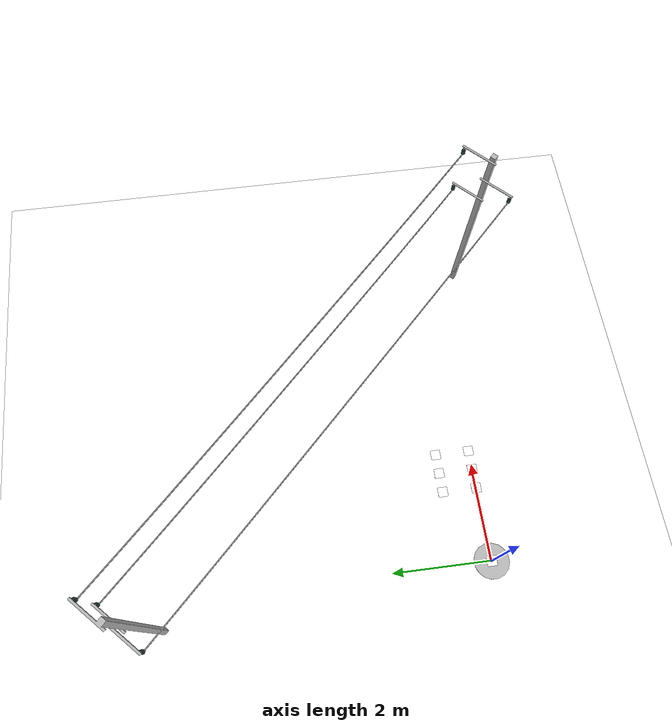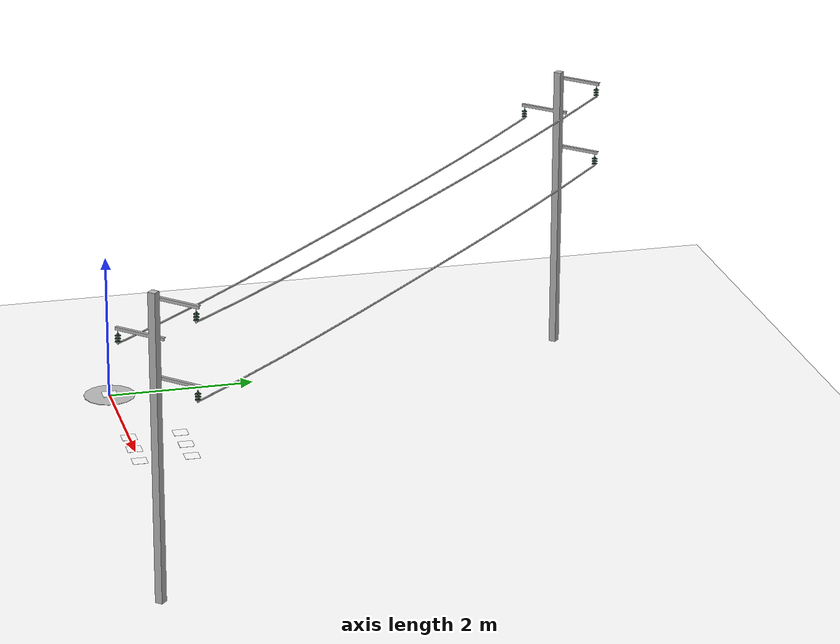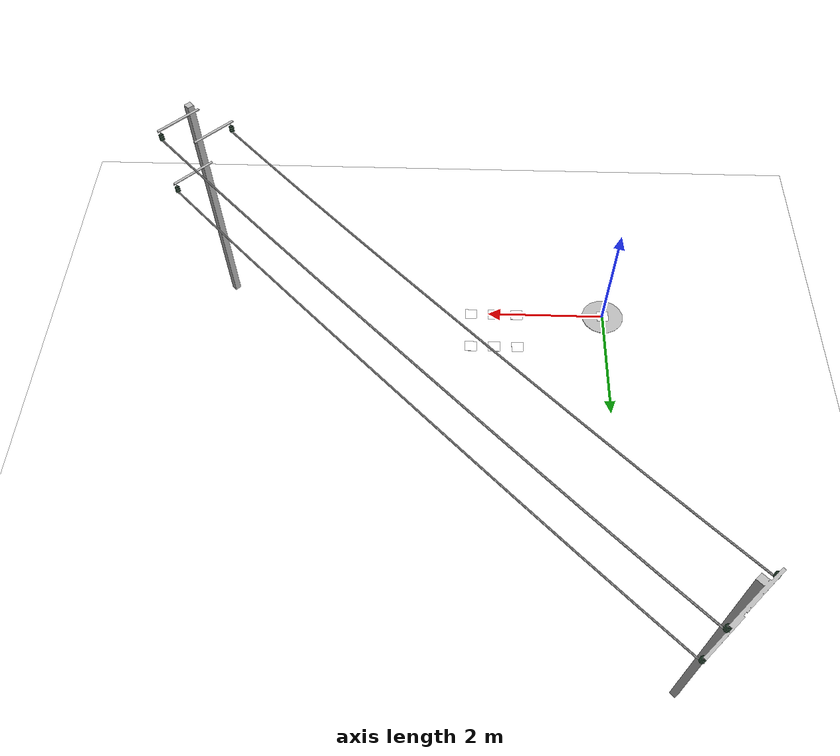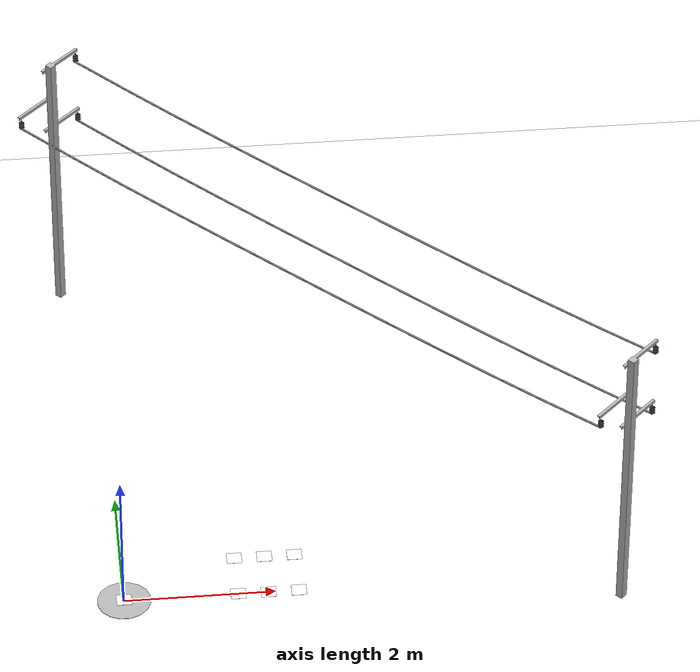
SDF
<?xml version="1.0" ?>
<sdf version="1.10">
  <world name="clover_aruco">

    <physics name="1ms" type="ignored">
      <max_step_size>0.001</max_step_size>
      <real_time_factor>1.0</real_time_factor>
      <real_time_update_rate>1000</real_time_update_rate>
    </physics>

    <scene>
      <ambient>0.9 0.9 0.9 1</ambient>
      <background>0.5 0.7 1.0 1</background>
      <sky/>
      <shadows>true</shadows>
    </scene>

    <plugin filename="gz-sim-physics-system" name="gz::sim::systems::Physics"/>
    <plugin filename="gz-sim-user-commands-system" name="gz::sim::systems::UserCommands"/>
    <plugin filename="gz-sim-scene-broadcaster-system" name="gz::sim::systems::SceneBroadcaster"/>
    <plugin filename="gz-sim-sensors-system" name="gz::sim::systems::Sensors">
      <render_engine>ogre2</render_engine>
    </plugin>
    <plugin filename="gz-sim-imu-system" name="gz::sim::systems::Imu"/>
    <plugin filename="gz-sim-air-pressure-system" name="gz::sim::systems::AirPressure"/>
    <plugin filename="gz-sim-magnetometer-system" name="gz::sim::systems::Magnetometer"/>
    <plugin filename="gz-sim-navsat-system" name="gz::sim::systems::NavSat"/>

    <gui fullscreen="0">
      <plugin filename="MinimalScene" name="3D View">
        <gz-gui>
          <title>3D View</title>
          <property type="bool" key="showTitleBar">false</property>
          <property type="string" key="state">docked</property>
        </gz-gui>
        <engine>ogre2</engine>
        <scene>scene</scene>
        <ambient_light>0.9 0.9 0.9</ambient_light>
        <background_color>0.5 0.7 1.0</background_color>
        <sky>true</sky>
        <camera_pose>-5 -5 3 0 0.4 0.785</camera_pose>
      </plugin>
          <plugin filename="GzSceneManager" name="Scene Manager">
        <gz-gui>
          <property key="resizable" type="bool">false</property>
          <property key="width" type="double">5</property>
          <property key="height" type="double">5</property>
          <property key="state" type="string">floating</property>
          <property key="showTitleBar" type="bool">false</property>
        </gz-gui>
      </plugin>
      <plugin filename="InteractiveViewControl" name="Interactive view control">
        <gz-gui>
          <property key="resizable" type="bool">false</property>
          <property key="width" type="double">5</property>
          <property key="height" type="double">5</property>
          <property key="state" type="string">floating</property>
          <property key="showTitleBar" type="bool">false</property>
        </gz-gui>
      </plugin>
      <plugin filename="CameraTracking" name="Camera tracking">
        <gz-gui>
          <property key="resizable" type="bool">false</property>
          <property key="width" type="double">5</property>
          <property key="height" type="double">5</property>
          <property key="state" type="string">floating</property>
          <property key="showTitleBar" type="bool">false</property>
        </gz-gui>
      </plugin>
      <plugin filename="WorldControl" name="World control">
        <gz-gui>
          <title>World control</title>
          <property type="bool" key="showTitleBar">false</property>
          <property type="bool" key="resizable">false</property>
          <property type="double" key="height">72</property>
          <property type="double" key="width">121</property>
          <property type="double" key="z">1</property>
          <property type="string" key="state">floating</property>
          <anchors target="3D View">
            <line own="left" target="left"/>
            <line own="bottom" target="bottom"/>
          </anchors>
        </gz-gui>
        <play_pause>true</play_pause>
        <step>true</step>
        <start_paused>false</start_paused>
      </plugin>
      <plugin filename="WorldStats" name="World stats">
        <gz-gui>
          <title>World stats</title>
          <property type="bool" key="showTitleBar">false</property>
          <property type="bool" key="resizable">false</property>
          <property type="double" key="height">110</property>
          <property type="double" key="width">290</property>
          <property type="double" key="z">1</property>
          <property type="string" key="state">floating</property>
          <anchors target="3D View">
            <line own="right" target="right"/>
            <line own="bottom" target="bottom"/>
          </anchors>
        </gz-gui>
        <sim_time>true</sim_time>
        <real_time>true</real_time>
        <real_time_factor>true</real_time_factor>
        <iterations>true</iterations>
      </plugin>
      <plugin filename="Screenshot" name="Screenshot">
        <gz-gui>
          <property key="resizable" type="bool">false</property>
          <property key="width" type="double">5</property>
          <property key="height" type="double">5</property>
          <property key="state" type="string">floating</property>
          <property key="showTitleBar" type="bool">false</property>
        </gz-gui>
      </plugin>
    </gui>

    <light type="directional" name="sun">
      <cast_shadows>true</cast_shadows>
      <pose>0 0 10 0 0 0</pose>
      <diffuse>1.0 1.0 0.95 1</diffuse>
      <specular>0.6 0.6 0.6 1</specular>
      <attenuation>
        <range>1000</range>
        <constant>1.0</constant>
        <linear>0.0</linear>
        <quadratic>0.0</quadratic>
      </attenuation>
      <direction>-0.4 0.1 -0.9</direction>
    </light>

    <light type="directional" name="fill_light">
      <cast_shadows>false</cast_shadows>
      <pose>0 0 10 0 0 0</pose>
      <diffuse>0.5 0.55 0.6 1</diffuse>
      <specular>0.1 0.1 0.1 1</specular>
      <direction>0.4 -0.2 -0.7</direction>
    </light>

    <!-- Parquet/grass ground -->
    <include>
      <uri>model://parquet_plane</uri>
      <pose>0 0 -0.01 0 0 0</pose>
    </include>

    <!-- Cable tower at 3,3 with 135° yaw (matches original world) -->
    <include>
      <uri>model://cable_tower</uri>
      <pose>3 3 0 0 0 2.3562</pose>
    </include>

    <!-- Landing pad at origin -->
    <include>
      <uri>model://landing_pad</uri>
      <pose>0 0 0 0 0 0</pose>
    </include>

    <include><uri>model://aruco_0</uri>  <pose>0.0 0.0 0.02 0 0 0</pose></include>
    <include><uri>model://aruco_1</uri>  <pose>1.5 0.0 0.001 0 0 0</pose></include>
    <include><uri>model://aruco_2</uri>  <pose>1.9 0.0 0.001 0 0 0</pose></include>
    <include><uri>model://aruco_3</uri>  <pose>2.3 0.0 0.001 0 0 0</pose></include>
    <include><uri>model://aruco_11</uri> <pose>1.5 0.7 0.001 0 0 0</pose></include>
    <include><uri>model://aruco_12</uri> <pose>1.9 0.7 0.001 0 0 0</pose></include>
    <include><uri>model://aruco_13</uri> <pose>2.3 0.7 0.001 0 0 0</pose></include>

  </world>
</sdf>

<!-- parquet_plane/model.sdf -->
<sdf version="1.10">
  <model name="parquet_plane">
    <static>true</static>
    <link name="link">
      <collision name="collision">
        <geometry>
          <box>
            <size>200 200 0.02</size>
          </box>
        </geometry>
      </collision>
      <visual name="visual">
        <cast_shadows>false</cast_shadows>
        <geometry>
          <box>
            <size>200 200 0.02</size>
          </box>
        </geometry>
        <material>
          <ambient>0.8 0.8 0.8 1</ambient>
          <diffuse>1.0 1.0 1.0 1</diffuse>
          <specular>0.1 0.1 0.1 1</specular>
          <pbr>
            <metal>
              <albedo_map>model://parquet_plane/materials/textures/grass.png</albedo_map>
              <metalness>0.0</metalness>
              <roughness>0.9</roughness>
            </metal>
          </pbr>
        </material>
      </visual>
    </link>
  </model>
</sdf>

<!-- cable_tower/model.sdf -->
<sdf version="1.10">
  <model name="cable_tower">
    <static>true</static>
    <link name="link">
      <collision name="collision">
        <geometry>
          <mesh>
            <scale>1 1 1</scale>
            <uri>model://cable_tower/meshes/cable_tower.dae</uri>
          </mesh>
        </geometry>
      </collision>
      <visual name="visual">
        <geometry>
          <mesh>
            <scale>1 1 1</scale>
            <uri>model://cable_tower/meshes/cable_tower.dae</uri>
          </mesh>
        </geometry>
      </visual>
    </link>
  </model>
</sdf>

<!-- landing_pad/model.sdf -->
<sdf version="1.10">
  <model name="landing_pad">
    <static>true</static>
    <link name="link">
      <visual name="visual">
        <geometry>
          <mesh>
            <scale>1 1 1</scale>
            <uri>model://landing_pad/meshes/landing_pad.dae</uri>
          </mesh>
        </geometry>
      </visual>
    </link>
  </model>
</sdf>

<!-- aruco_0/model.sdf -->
<sdf version="1.10">
  <model name="aruco_0">
    <static>true</static>
    <link name="link">
      <visual name="visual">
        <geometry>
          <box>
            <size>0.2 0.2 0.002</size>
          </box>
        </geometry>
        <material>
          <diffuse>1 1 1 1</diffuse>
          <specular>0 0 0 1</specular>
          <pbr>
            <metal>
              <albedo_map>materials/textures/aruco_0.png</albedo_map>
              <metalness>0.0</metalness>
              <roughness>1.0</roughness>
            </metal>
          </pbr>
        </material>
      </visual>
    </link>
  </model>
</sdf>

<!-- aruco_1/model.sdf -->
<sdf version="1.10">
  <model name="aruco_1">
    <static>true</static>
    <link name="link">
      <visual name="visual">
        <geometry>
          <box>
            <size>0.2 0.2 0.002</size>
          </box>
        </geometry>
        <material>
          <diffuse>1 1 1 1</diffuse>
          <specular>0 0 0 1</specular>
          <pbr>
            <metal>
              <albedo_map>materials/textures/aruco_1.png</albedo_map>
              <metalness>0.0</metalness>
              <roughness>1.0</roughness>
            </metal>
          </pbr>
        </material>
      </visual>
    </link>
  </model>
</sdf>

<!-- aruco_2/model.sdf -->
<sdf version="1.10">
  <model name="aruco_2">
    <static>true</static>
    <link name="link">
      <visual name="visual">
        <geometry>
          <box>
            <size>0.2 0.2 0.002</size>
          </box>
        </geometry>
        <material>
          <diffuse>1 1 1 1</diffuse>
          <specular>0 0 0 1</specular>
          <pbr>
            <metal>
              <albedo_map>materials/textures/aruco_2.png</albedo_map>
              <metalness>0.0</metalness>
              <roughness>1.0</roughness>
            </metal>
          </pbr>
        </material>
      </visual>
    </link>
  </model>
</sdf>

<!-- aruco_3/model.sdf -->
<sdf version="1.10">
  <model name="aruco_3">
    <static>true</static>
    <link name="link">
      <visual name="visual">
        <geometry>
          <box>
            <size>0.2 0.2 0.002</size>
          </box>
        </geometry>
        <material>
          <diffuse>1 1 1 1</diffuse>
          <specular>0 0 0 1</specular>
          <pbr>
            <metal>
              <albedo_map>materials/textures/aruco_3.png</albedo_map>
              <metalness>0.0</metalness>
              <roughness>1.0</roughness>
            </metal>
          </pbr>
        </material>
      </visual>
    </link>
  </model>
</sdf>

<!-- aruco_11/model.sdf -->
<sdf version="1.10">
  <model name="aruco_11">
    <static>true</static>
    <link name="link">
      <visual name="visual">
        <geometry>
          <box>
            <size>0.2 0.2 0.002</size>
          </box>
        </geometry>
        <material>
          <diffuse>1 1 1 1</diffuse>
          <specular>0 0 0 1</specular>
          <pbr>
            <metal>
              <albedo_map>materials/textures/aruco_11.png</albedo_map>
              <metalness>0.0</metalness>
              <roughness>1.0</roughness>
            </metal>
          </pbr>
        </material>
      </visual>
    </link>
  </model>
</sdf>

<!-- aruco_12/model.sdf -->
<sdf version="1.10">
  <model name="aruco_12">
    <static>true</static>
    <link name="link">
      <visual name="visual">
        <geometry>
          <box>
            <size>0.2 0.2 0.002</size>
          </box>
        </geometry>
        <material>
          <diffuse>1 1 1 1</diffuse>
          <specular>0 0 0 1</specular>
          <pbr>
            <metal>
              <albedo_map>materials/textures/aruco_12.png</albedo_map>
              <metalness>0.0</metalness>
              <roughness>1.0</roughness>
            </metal>
          </pbr>
        </material>
      </visual>
    </link>
  </model>
</sdf>

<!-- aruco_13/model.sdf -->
<sdf version="1.10">
  <model name="aruco_13">
    <static>true</static>
    <link name="link">
      <visual name="visual">
        <geometry>
          <box>
            <size>0.2 0.2 0.002</size>
          </box>
        </geometry>
        <material>
          <diffuse>1 1 1 1</diffuse>
          <specular>0 0 0 1</specular>
          <pbr>
            <metal>
              <albedo_map>materials/textures/aruco_13.png</albedo_map>
              <metalness>0.0</metalness>
              <roughness>1.0</roughness>
            </metal>
          </pbr>
        </material>
      </visual>
    </link>
  </model>
</sdf>
